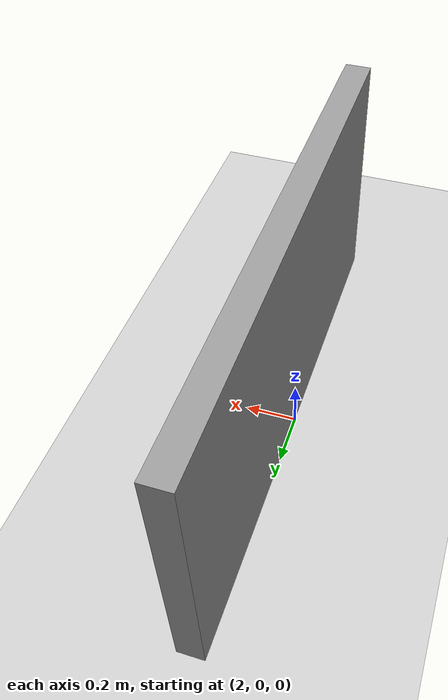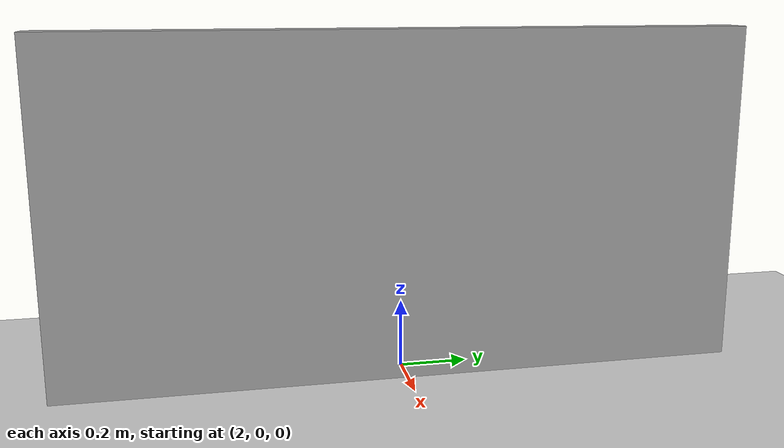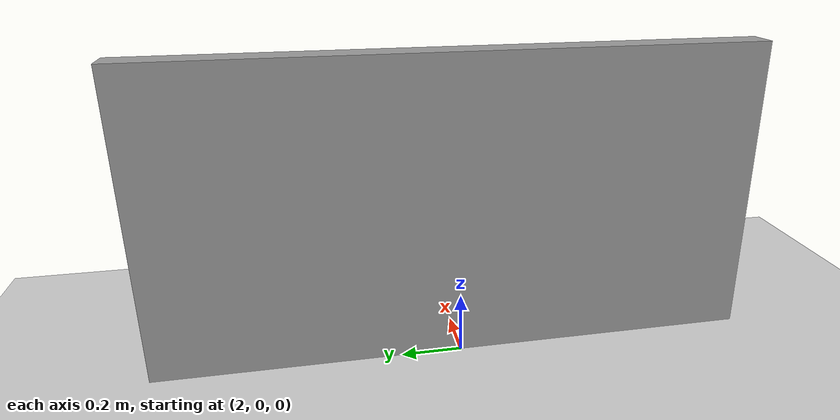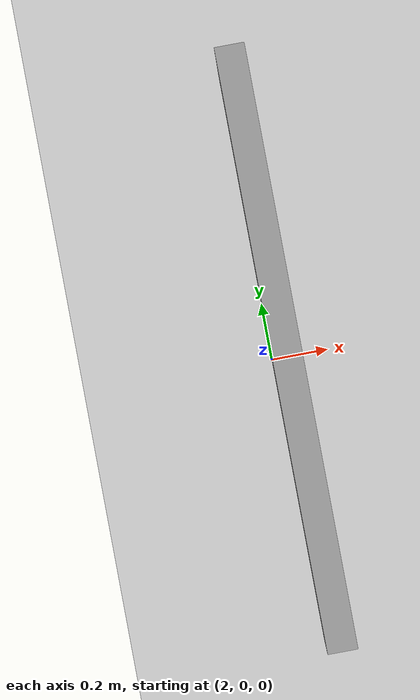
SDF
<?xml version="1.0"?>
<sdf version="1.9">
  <world name="my_world">

    <physics name="default" type="ignored">
      <max_step_size>0.001</max_step_size>
      <real_time_factor>1.0</real_time_factor>
    </physics>

    <plugin filename="gz-sim-physics-system"
            name="gz::sim::systems::Physics"/>
    <plugin filename="gz-sim-user-commands-system"
            name="gz::sim::systems::UserCommands"/>
    <plugin filename="gz-sim-scene-broadcaster-system"
            name="gz::sim::systems::SceneBroadcaster"/>
    <plugin filename="gz-sim-sensors-system"
            name="gz::sim::systems::Sensors">
      <render_engine>ogre2</render_engine>
    </plugin>

    <light name="sun" type="directional">
      <cast_shadows>true</cast_shadows>
      <pose>0 0 10 0 0 0</pose>
      <diffuse>0.8 0.8 0.8 1</diffuse>
      <specular>0.2 0.2 0.2 1</specular>
      <direction>-0.5 0.1 -0.9</direction>
    </light>

    <model name="ground_plane">
      <static>true</static>
      <link name="link">
        <collision name="collision">
          <geometry>
            <plane>
              <normal>0 0 1</normal>
              <size>100 100</size>
            </plane>
          </geometry>
        </collision>
        <visual name="visual">
          <geometry>
            <plane>
              <normal>0 0 1</normal>
              <size>100 100</size>
            </plane>
          </geometry>
          <material>
            <ambient>0.8 0.8 0.8 1</ambient>
            <diffuse>0.8 0.8 0.8 1</diffuse>
          </material>
        </visual>
      </link>
    </model>

    <!-- Wall near face at x=2.0 m: model centre at x=2.05 (box half-width 0.05) -->
    <model name="wall">
      <static>true</static>
      <pose>2.05 0 0.5 0 0 0</pose>
      <link name="link">
        <collision name="collision">
          <geometry>
            <box><size>0.1 2.0 1.0</size></box>
          </geometry>
        </collision>
        <visual name="visual">
          <geometry>
            <box><size>0.1 2.0 1.0</size></box>
          </geometry>
          <material>
            <ambient>0.6 0.6 0.6 1</ambient>
            <diffuse>0.6 0.6 0.6 1</diffuse>
          </material>
        </visual>
      </link>
    </model>

  </world>
</sdf>
